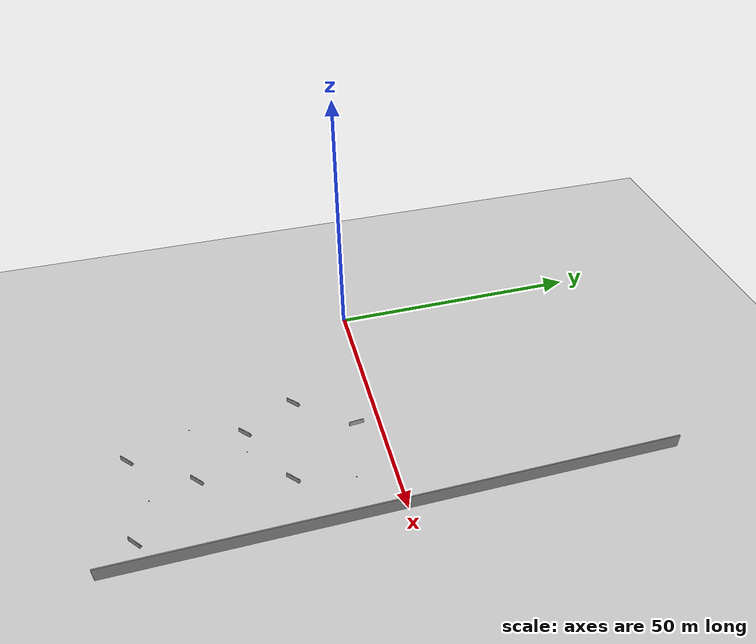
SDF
<sdf version="1.6">
 <world name="default">
  <model name="ground_plane">
   <static>1</static>
   <link name="link">
    <collision name="collision">
     <geometry><plane><normal>0 0 1</normal><size>100 100</size></plane></geometry>
     <surface>
      <contact><collide_bitmask>65535</collide_bitmask></contact>
      <friction><ode><mu>100</mu><mu2>50</mu2></ode></friction>
     </surface>
    </collision>
    <visual name="visual">
     <cast_shadows>0</cast_shadows>
     <geometry><plane><normal>0 0 1</normal><size>100 100</size></plane></geometry>
     <material>
      <script><uri>file://media/materials/scripts/gazebo.material</uri><name>Gazebo/Grey</name></script>
     </material>
    </visual>
   </link>
   <pose>-0.027205 0.027206 0 0 -0 0</pose>
  </model>
  <model name="road_barricade_0_clone_5">
   <static>0</static>
   <link name="ball">
    <pose>0 0 0.1 0 -0 0</pose>
    <collision name="collision">
     <geometry><mesh><uri>model://road_barricade/road_barricade.dae</uri></mesh></geometry>
     <surface>
      <bounce><restitution_coefficient>0.2</restitution_coefficient><threshold>100</threshold></bounce>
      <contact><ode><max_vel>10</max_vel></ode></contact>
     </surface>
    </collision>
    <visual name="visual">
     <geometry><mesh><uri>model://road_barricade/road_barricade.dae</uri></mesh></geometry>
    </visual>
    <inertial>
     <mass>200</mass>
     <inertia>
      <ixx>0.075021</ixx>
      <ixy>3e-06</ixy>
      <ixz>-2.9e-05</ixz>
      <iyy>0.89513</iyy>
      <iyz>-0.00631</iyz>
      <izz>0.847779</izz>
     </inertia>
    </inertial>
   </link>
   <pose>29.3899 -4.14525 -0.100006 8.4e-05 3.9e-05 -1.46605</pose>
  </model>
  <model name="road_barricade_0_clone_26_clone_0">
   <static>0</static>
   <link name="ball">
    <pose>0 0 0.1 0 -0 0</pose>
    <collision name="collision">
     <geometry><mesh><uri>model://road_barricade/road_barricade.dae</uri></mesh></geometry>
     <surface>
      <bounce><restitution_coefficient>0.2</restitution_coefficient><threshold>100</threshold></bounce>
      <contact><ode><max_vel>10</max_vel></ode></contact>
     </surface>
    </collision>
    <visual name="visual">
     <geometry><mesh><uri>model://road_barricade/road_barricade.dae</uri></mesh></geometry>
    </visual>
    <inertial>
     <mass>200</mass>
     <inertia>
      <ixx>0.075021</ixx>
      <ixy>3e-06</ixy>
      <ixz>-2.9e-05</ixz>
      <iyy>0.89513</iyy>
      <iyz>-0.00631</iyz>
      <izz>0.847779</izz>
     </inertia>
    </inertial>
   </link>
   <pose>39.0007 -17.4367 -0.100006 8.4e-05 3.9e-05 -2.40326</pose>
  </model>
  <model name="road_barricade_0_clone_26_clone_1">
   <static>0</static>
   <link name="ball">
    <pose>0 0 0.1 0 -0 0</pose>
    <collision name="collision">
     <geometry><mesh><uri>model://road_barricade/road_barricade.dae</uri></mesh></geometry>
     <surface>
      <bounce><restitution_coefficient>0.2</restitution_coefficient><threshold>100</threshold></bounce>
      <contact><ode><max_vel>10</max_vel></ode></contact>
     </surface>
    </collision>
    <visual name="visual">
     <geometry><mesh><uri>model://road_barricade/road_barricade.dae</uri></mesh></geometry>
    </visual>
    <inertial>
     <mass>200</mass>
     <inertia>
      <ixx>0.075021</ixx>
      <ixy>3e-06</ixy>
      <ixz>-2.9e-05</ixz>
      <iyy>0.89513</iyy>
      <iyz>-0.00631</iyz>
      <izz>0.847779</izz>
     </inertia>
    </inertial>
   </link>
   <pose>35.0405 -33.4391 -0.100013 0.00027 -6.3e-05 -2.40278</pose>
  </model>
  <model name="road_barricade_0_clone_26_clone_4">
   <static>0</static>
   <link name="ball">
    <pose>0 0 0.1 0 -0 0</pose>
    <collision name="collision">
     <geometry><mesh><uri>model://road_barricade/road_barricade.dae</uri></mesh></geometry>
     <surface>
      <bounce><restitution_coefficient>0.2</restitution_coefficient><threshold>100</threshold></bounce>
      <contact><ode><max_vel>10</max_vel></ode></contact>
     </surface>
    </collision>
    <visual name="visual">
     <geometry><mesh><uri>model://road_barricade/road_barricade.dae</uri></mesh></geometry>
    </visual>
    <inertial>
     <mass>200</mass>
     <inertia>
      <ixx>0.075021</ixx>
      <ixy>3e-06</ixy>
      <ixz>-2.9e-05</ixz>
      <iyy>0.89513</iyy>
      <iyz>-0.00631</iyz>
      <izz>0.847779</izz>
     </inertia>
    </inertial>
   </link>
   <pose>44.9425 -43.9144 -0.100013 -0.000189 3.8e-05 -2.42554</pose>
  </model>
  <model name="road_barricade_0_clone_26_clone_13">
   <static>0</static>
   <link name="ball">
    <pose>0 0 0.1 0 -0 0</pose>
    <collision name="collision">
     <geometry><mesh><uri>model://road_barricade/road_barricade.dae</uri></mesh></geometry>
     <surface>
      <bounce><restitution_coefficient>0.2</restitution_coefficient><threshold>100</threshold></bounce>
      <contact><ode><max_vel>10</max_vel></ode></contact>
     </surface>
    </collision>
    <visual name="visual">
     <geometry><mesh><uri>model://road_barricade/road_barricade.dae</uri></mesh></geometry>
    </visual>
    <inertial>
     <mass>200</mass>
     <inertia>
      <ixx>0.075021</ixx>
      <ixy>3e-06</ixy>
      <ixz>-2.9e-05</ixz>
      <iyy>0.89513</iyy>
      <iyz>-0.00631</iyz>
      <izz>0.847779</izz>
     </inertia>
    </inertial>
   </link>
   <pose>21.2766 -14.5218 -0.100006 8.4e-05 3.9e-05 -2.40353</pose>
  </model>
  <model name="road_barricade_0_clone_26_clone_14">
   <static>0</static>
   <link name="ball">
    <pose>0 0 0.1 0 -0 0</pose>
    <collision name="collision">
     <geometry><mesh><uri>model://road_barricade/road_barricade.dae</uri></mesh></geometry>
     <surface>
      <bounce><restitution_coefficient>0.2</restitution_coefficient><threshold>100</threshold></bounce>
      <contact><ode><max_vel>10</max_vel></ode></contact>
     </surface>
    </collision>
    <visual name="visual">
     <geometry><mesh><uri>model://road_barricade/road_barricade.dae</uri></mesh></geometry>
    </visual>
    <inertial>
     <mass>200</mass>
     <inertia>
      <ixx>0.075021</ixx>
      <ixy>3e-06</ixy>
      <ixz>-2.9e-05</ixz>
      <iyy>0.89513</iyy>
      <iyz>-0.00631</iyz>
      <izz>0.847779</izz>
     </inertia>
    </inertial>
   </link>
   <pose>26.3911 -24.243 -0.100013 0.00027 -6.3e-05 -2.40361</pose>
  </model>
  <model name="road_barricade_0_clone_26_clone_15">
   <static>0</static>
   <link name="ball">
    <pose>0 0 0.1 0 -0 0</pose>
    <collision name="collision">
     <geometry><mesh><uri>model://road_barricade/road_barricade.dae</uri></mesh></geometry>
     <surface>
      <bounce><restitution_coefficient>0.2</restitution_coefficient><threshold>100</threshold></bounce>
      <contact><ode><max_vel>10</max_vel></ode></contact>
     </surface>
    </collision>
    <visual name="visual">
     <geometry><mesh><uri>model://road_barricade/road_barricade.dae</uri></mesh></geometry>
    </visual>
    <inertial>
     <mass>200</mass>
     <inertia>
      <ixx>0.075021</ixx>
      <ixy>3e-06</ixy>
      <ixz>-2.9e-05</ixz>
      <iyy>0.89513</iyy>
      <iyz>-0.00631</iyz>
      <izz>0.847779</izz>
     </inertia>
    </inertial>
   </link>
   <pose>27.4504 -44.9998 -0.100013 0.00027 -6.3e-05 -2.40155</pose>
  </model>
  <model name="pylon_4">
   <static>0</static>
   <link name="ball">
    <pose>0 0 0.1 1.5708 -0 0</pose>
    <collision name="collision"><geometry><mesh><uri>model://pylon/pylon.dae</uri></mesh></geometry></collision>
    <visual name="visual"><geometry><mesh><uri>model://pylon/pylon.dae</uri></mesh></geometry></visual>
    <inertial>
     <mass>4.5</mass>
     <inertia><ixx>1</ixx><ixy>0</ixy><ixz>0</ixz><iyy>1</iyy><iyz>0</iyz><izz>1</izz></inertia>
    </inertial>
   </link>
   <pose>37.1473 -41.5739 0.034267 -3e-06 -2e-06 0.000773</pose>
  </model>
  <model name="pylon_5">
   <static>0</static>
   <link name="ball">
    <pose>0 0 0.1 1.5708 -0 0</pose>
    <collision name="collision"><geometry><mesh><uri>model://pylon/pylon.dae</uri></mesh></geometry></collision>
    <visual name="visual"><geometry><mesh><uri>model://pylon/pylon.dae</uri></mesh></geometry></visual>
    <inertial>
     <mass>4.5</mass>
     <inertia><ixx>1</ixx><ixy>0</ixy><ixz>0</ixz><iyy>1</iyy><iyz>0</iyz><izz>1</izz></inertia>
    </inertial>
   </link>
   <pose>30.8747 -24.3745 0.034267 -3e-06 2e-06 0.000786</pose>
  </model>
  <model name="pylon_6">
   <static>0</static>
   <link name="ball">
    <pose>0 0 0.1 1.5708 -0 0</pose>
    <collision name="collision"><geometry><mesh><uri>model://pylon/pylon.dae</uri></mesh></geometry></collision>
    <visual name="visual"><geometry><mesh><uri>model://pylon/pylon.dae</uri></mesh></geometry></visual>
    <inertial>
     <mass>4.5</mass>
     <inertia><ixx>1</ixx><ixy>0</ixy><ixz>0</ixz><iyy>1</iyy><iyz>0</iyz><izz>1</izz></inertia>
    </inertial>
   </link>
   <pose>41.47 -6.88464 0.034266 -8e-06 6e-06 0.000625</pose>
  </model>
  <model name="pylon_7">
   <static>0</static>
   <link name="ball">
    <pose>0 0 0.1 1.5708 -0 0</pose>
    <collision name="collision"><geometry><mesh><uri>model://pylon/pylon.dae</uri></mesh></geometry></collision>
    <visual name="visual"><geometry><mesh><uri>model://pylon/pylon.dae</uri></mesh></geometry></visual>
    <inertial>
     <mass>4.5</mass>
     <inertia><ixx>1</ixx><ixy>0</ixy><ixz>0</ixz><iyy>1</iyy><iyz>0</iyz><izz>1</izz></inertia>
    </inertial>
   </link>
   <pose>33.2822 0.043768 0.034267 0 -4e-06 0.000718</pose>
  </model>
  <model name="pylon_16_clone_33">
   <static>0</static>
   <link name="ball">
    <pose>0 0 0.1 1.5708 -0 0</pose>
    <collision name="collision"><geometry><mesh><uri>model://pylon/pylon.dae</uri></mesh></geometry></collision>
    <visual name="visual"><geometry><mesh><uri>model://pylon/pylon.dae</uri></mesh></geometry></visual>
    <inertial>
     <mass>4.5</mass>
     <inertia><ixx>1</ixx><ixy>0</ixy><ixz>0</ixz><iyy>1</iyy><iyz>0</iyz><izz>1</izz></inertia>
    </inertial>
   </link>
   <pose>22.8974 -33.9986 0.034267 -3e-06 2e-06 0.000597</pose>
  </model>
  <model name="grey_wall_clone_clone">
   <static>1</static>
   <link name="link">
    <pose>0 0 1.4 0 -0 0</pose>
    <collision name="collision"><geometry><box><size>100 0.2 2.8</size></box></geometry></collision>
    <visual name="visual">
     <cast_shadows>0</cast_shadows>
     <geometry><box><size>100 0.2 2.8</size></box></geometry>
     <material>
      <script>
       <uri>model://grey_wall/materials/scripts</uri>
       <uri>model://grey_wall/materials/textures</uri>
       <name>vrc/grey_wall</name>
      </script>
     </material>
    </visual>
   </link>
   <pose>50 0 0 0 -0 1.5707</pose>
  </model>
 </world>
</sdf>
